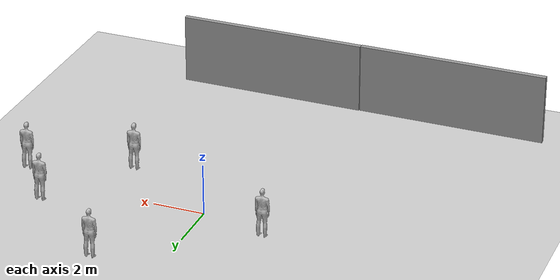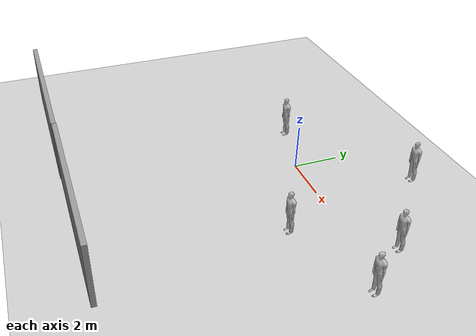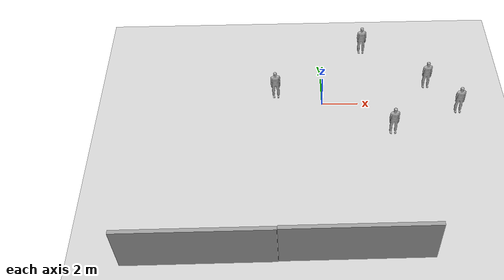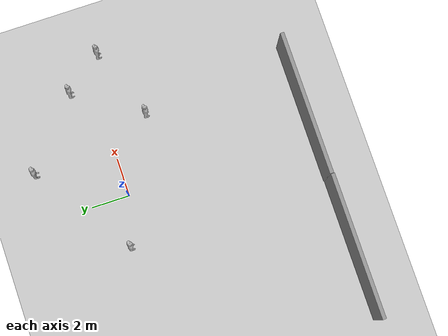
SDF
<sdf version="1.7">
 <world name="default">
  <light name="sun" type="directional">
   <pose>0 0 10 0 -0 0</pose>
   <diffuse>0.8 0.8 0.8 1</diffuse>
   <specular>0.2 0.2 0.2 1</specular>
   <attenuation>
    <range>1000</range>
    <constant>0.9</constant>
    <linear>0.01</linear>
    <quadratic>0.001</quadratic>
   </attenuation>
   <direction>-0.5 0.1 -0.9</direction>
   <spot><inner_angle>0</inner_angle><outer_angle>0</outer_angle><falloff>0</falloff></spot>
  </light>
  <model name="ground_plane">
   <static>1</static>
   <link name="link">
    <collision name="collision">
     <geometry><plane><normal>0 0 1</normal><size>100 100</size></plane></geometry>
     <surface><friction><ode><mu>100</mu><mu2>50</mu2></ode></friction></surface>
    </collision>
    <visual name="visual">
     <cast_shadows>0</cast_shadows>
     <geometry><plane><normal>0 0 1</normal><size>100 100</size></plane></geometry>
     <material>
      <script><uri>file://media/materials/scripts/gazebo.material</uri><name>Gazebo/Grey</name></script>
     </material>
    </visual>
   </link>
  </model>
  <gravity>0 0 -9.8</gravity>
  <magnetic_field>6e-06 2.3e-05 -4.2e-05</magnetic_field>
  <atmosphere type="adiabatic"/>
  <physics type="ode">
   <max_step_size>0.001</max_step_size>
   <real_time_factor>1</real_time_factor>
   <real_time_update_rate>1000</real_time_update_rate>
  </physics>
  <scene><ambient>0.4 0.4 0.4 1</ambient><background>0.7 0.7 0.7 1</background><shadows>1</shadows></scene>
  <spherical_coordinates>
   <surface_model>EARTH_WGS84</surface_model>
   <latitude_deg>0</latitude_deg>
   <longitude_deg>0</longitude_deg>
   <elevation>0</elevation>
   <heading_deg>0</heading_deg>
  </spherical_coordinates>
  <model name="person_standing">
   <link name="link">
    <inertial>
     <pose>0 -0.1 0.95 0 -0 0</pose>
     <mass>80</mass>
     <inertia><ixx>24.88</ixx><ixy>0</ixy><ixz>0</ixz><iyy>25.73</iyy><iyz>0</iyz><izz>2.48</izz></inertia>
    </inertial>
    <collision name="bottom">
     <pose>0 -0.1 0.01 0 -0 0</pose>
     <geometry><box><size>0.5 0.35 0.02</size></box></geometry>
    </collision>
    <collision name="person">
     <pose>0 0 0.02 0.04 -0 0</pose>
     <geometry><mesh><uri>model://person_standing/meshes/standing.dae</uri></mesh></geometry>
    </collision>
    <visual name="visual">
     <pose>0 0 0.02 0.04 -0 0</pose>
     <geometry><mesh><uri>model://person_standing/meshes/standing.dae</uri></mesh></geometry>
    </visual>
   </link>
   <pose>3.77396 -2.07108 -0 1e-06 -1e-06 -0.000283</pose>
  </model>
  <model name="person_standing_0">
   <link name="link">
    <inertial>
     <pose>0 -0.1 0.95 0 -0 0</pose>
     <mass>80</mass>
     <inertia><ixx>24.88</ixx><ixy>0</ixy><ixz>0</ixz><iyy>25.73</iyy><iyz>0</iyz><izz>2.48</izz></inertia>
    </inertial>
    <collision name="bottom">
     <pose>0 -0.1 0.01 0 -0 0</pose>
     <geometry><box><size>0.5 0.35 0.02</size></box></geometry>
    </collision>
    <collision name="person">
     <pose>0 0 0.02 0.04 -0 0</pose>
     <geometry><mesh><uri>model://person_standing/meshes/standing.dae</uri></mesh></geometry>
    </collision>
    <visual name="visual">
     <pose>0 0 0.02 0.04 -0 0</pose>
     <geometry><mesh><uri>model://person_standing/meshes/standing.dae</uri></mesh></geometry>
    </visual>
   </link>
   <pose>6.00542 1.32872 0 0 1e-06 -0.000373</pose>
  </model>
  <model name="person_standing_1">
   <link name="link">
    <inertial>
     <pose>0 -0.1 0.95 0 -0 0</pose>
     <mass>80</mass>
     <inertia><ixx>24.88</ixx><ixy>0</ixy><ixz>0</ixz><iyy>25.73</iyy><iyz>0</iyz><izz>2.48</izz></inertia>
    </inertial>
    <collision name="bottom">
     <pose>0 -0.1 0.01 0 -0 0</pose>
     <geometry><box><size>0.5 0.35 0.02</size></box></geometry>
    </collision>
    <collision name="person">
     <pose>0 0 0.02 0.04 -0 0</pose>
     <geometry><mesh><uri>model://person_standing/meshes/standing.dae</uri></mesh></geometry>
    </collision>
    <visual name="visual">
     <pose>0 0 0.02 0.04 -0 0</pose>
     <geometry><mesh><uri>model://person_standing/meshes/standing.dae</uri></mesh></geometry>
    </visual>
   </link>
   <pose>7.55356 -0.652547 0 -1e-06 -1e-06 -0.000208</pose>
  </model>
  <model name="person_standing_2">
   <link name="link">
    <inertial>
     <pose>0 -0.1 0.95 0 -0 0</pose>
     <mass>80</mass>
     <inertia><ixx>24.88</ixx><ixy>0</ixy><ixz>0</ixz><iyy>25.73</iyy><iyz>0</iyz><izz>2.48</izz></inertia>
    </inertial>
    <collision name="bottom">
     <pose>0 -0.1 0.01 0 -0 0</pose>
     <geometry><box><size>0.5 0.35 0.02</size></box></geometry>
    </collision>
    <collision name="person">
     <pose>0 0 0.02 0.04 -0 0</pose>
     <geometry><mesh><uri>model://person_standing/meshes/standing.dae</uri></mesh></geometry>
    </collision>
    <visual name="visual">
     <pose>0 0 0.02 0.04 -0 0</pose>
     <geometry><mesh><uri>model://person_standing/meshes/standing.dae</uri></mesh></geometry>
    </visual>
   </link>
   <pose>2.51551 4.31235 0 0 1e-06 -0.00045</pose>
  </model>
  <model name="person_standing_3">
   <link name="link">
    <inertial>
     <pose>0 -0.1 0.95 0 -0 0</pose>
     <mass>80</mass>
     <inertia><ixx>24.88</ixx><ixy>0</ixy><ixz>0</ixz><iyy>25.73</iyy><iyz>0</iyz><izz>2.48</izz></inertia>
    </inertial>
    <collision name="bottom">
     <pose>0 -0.1 0.01 0 -0 0</pose>
     <geometry><box><size>0.5 0.35 0.02</size></box></geometry>
    </collision>
    <collision name="person">
     <pose>0 0 0.02 0.04 -0 0</pose>
     <geometry><mesh><uri>model://person_standing/meshes/standing.dae</uri></mesh></geometry>
    </collision>
    <visual name="visual">
     <pose>0 0 0.02 0.04 -0 0</pose>
     <geometry><mesh><uri>model://person_standing/meshes/standing.dae</uri></mesh></geometry>
    </visual>
   </link>
   <pose>-2.59314 0.773994 0 -1e-06 1e-06 -0.000575</pose>
  </model>
  <model name="grey_wall">
   <static>1</static>
   <link name="link">
    <pose>0 0 1.4 0 -0 0</pose>
    <collision name="collision"><geometry><box><size>7.5 0.2 2.8</size></box></geometry></collision>
    <visual name="visual">
     <cast_shadows>0</cast_shadows>
     <geometry><box><size>7.5 0.2 2.8</size></box></geometry>
     <material>
      <script>
       <uri>model://grey_wall/materials/scripts</uri>
       <uri>model://grey_wall/materials/textures</uri>
       <name>vrc/grey_wall</name>
      </script>
     </material>
    </visual>
   </link>
   <pose>-6.252 -9.90625 0 0 -0 0</pose>
  </model>
  <model name="grey_wall_0">
   <static>1</static>
   <link name="link">
    <pose>0 0 1.4 0 -0 0</pose>
    <collision name="collision"><geometry><box><size>7.5 0.2 2.8</size></box></geometry></collision>
    <visual name="visual">
     <cast_shadows>0</cast_shadows>
     <geometry><box><size>7.5 0.2 2.8</size></box></geometry>
     <material>
      <script>
       <uri>model://grey_wall/materials/scripts</uri>
       <uri>model://grey_wall/materials/textures</uri>
       <name>vrc/grey_wall</name>
      </script>
     </material>
    </visual>
   </link>
   <pose>1.26731 -9.8782 0 0 -0 0</pose>
  </model>
 </world>
</sdf>
